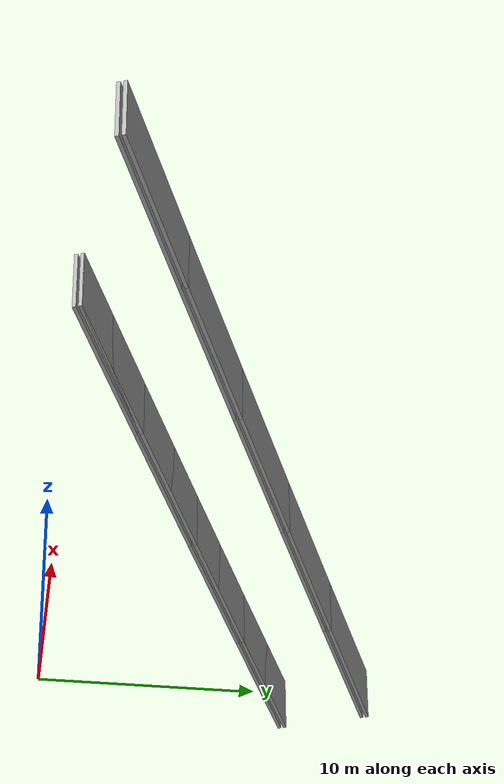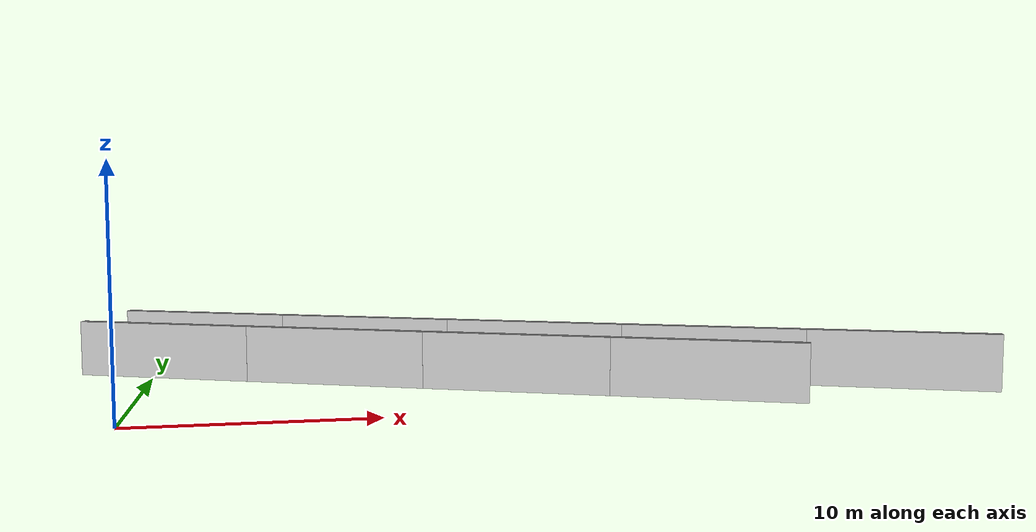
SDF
<?xml version="1.0" ?>
<sdf version="1.6">
  <model name="sps_0709">
    <pose frame="">0 0 0 0 -0 0</pose>
    <static>1</static>
    <self_collide>0</self_collide>
    <allow_auto_disable>0</allow_auto_disable>
    <link name="Wall6685">
      <kinematic>0</kinematic>
      <gravity>1</gravity>
      <self_collide>0</self_collide>
      <collision name="collision">
        <geometry>
          <box>
            <size>8.26089 0.15 2.5</size>
          </box>
        </geometry>
        <pose frame="">0 0 0 0 -0 0</pose>
      </collision>
      <visual name="visual">
        <geometry>
          <box>
            <size>8.26089 0.15 2.5</size>
          </box>
        </geometry>
        <pose frame="">0 0 0 0 -0 0</pose>
        <cast_shadows>1</cast_shadows>
        <transparency>0.0</transparency>
      </visual>
      <pose frame="">23.6659 1.42818 1.25 0 -0 2.77319</pose>
    </link>
    <link name="Wall6686">
      <kinematic>0</kinematic>
      <gravity>1</gravity>
      <self_collide>0</self_collide>
      <collision name="collision">
        <geometry>
          <box>
            <size>8.26117 0.15 2.5</size>
          </box>
        </geometry>
        <pose frame="">0 0 0 0 -0 0</pose>
      </collision>
      <visual name="visual">
        <geometry>
          <box>
            <size>8.26117 0.15 2.5</size>
          </box>
        </geometry>
        <pose frame="">0 0 0 0 -0 0</pose>
        <cast_shadows>1</cast_shadows>
        <transparency>0.0</transparency>
      </visual>
      <pose frame="">15.9628 4.41237 1.25 0 -0 2.77081</pose>
    </link>
    <link name="Wall6687">
      <kinematic>0</kinematic>
      <gravity>1</gravity>
      <self_collide>0</self_collide>
      <collision name="collision">
        <geometry>
          <box>
            <size>8.26106 0.15 2.5</size>
          </box>
        </geometry>
        <pose frame="">0 0 0 0 -0 0</pose>
      </collision>
      <visual name="visual">
        <geometry>
          <box>
            <size>8.26106 0.15 2.5</size>
          </box>
        </geometry>
        <pose frame="">0 0 0 0 -0 0</pose>
        <cast_shadows>1</cast_shadows>
        <transparency>0.0</transparency>
      </visual>
      <pose frame="">8.26656 7.41478 1.25 0 -0 2.76846</pose>
    </link>
    <link name="Wall6688">
      <kinematic>0</kinematic>
      <gravity>1</gravity>
      <self_collide>0</self_collide>
      <collision name="collision">
        <geometry>
          <box>
            <size>8.26095 0.15 2.5</size>
          </box>
        </geometry>
        <pose frame="">0 0 0 0 -0 0</pose>
      </collision>
      <visual name="visual">
        <geometry>
          <box>
            <size>8.26095 0.15 2.5</size>
          </box>
        </geometry>
        <pose frame="">0 0 0 0 -0 0</pose>
        <cast_shadows>1</cast_shadows>
        <transparency>0.0</transparency>
      </visual>
      <pose frame="">0.577567 10.4353 1.25 0 -0 2.76609</pose>
    </link>
    <link name="Wall6712">
      <kinematic>0</kinematic>
      <gravity>1</gravity>
      <self_collide>0</self_collide>
      <collision name="collision">
        <geometry>
          <box>
            <size>8.25168 0.15 2.5</size>
          </box>
        </geometry>
        <pose frame="">0 0 0 0 -0 0</pose>
      </collision>
      <visual name="visual">
        <geometry>
          <box>
            <size>8.25168 0.15 2.5</size>
          </box>
        </geometry>
        <pose frame="">0 0 0 0 -0 0</pose>
        <cast_shadows>1</cast_shadows>
        <transparency>0.0</transparency>
      </visual>
      <pose frame="">1.97826 13.9241 1.25 0 0 -0.375474</pose>
    </link>
    <link name="Wall6713">
      <kinematic>0</kinematic>
      <gravity>1</gravity>
      <self_collide>0</self_collide>
      <collision name="collision">
        <geometry>
          <box>
            <size>8.25157 0.15 2.5</size>
          </box>
        </geometry>
        <pose frame="">0 0 0 0 -0 0</pose>
      </collision>
      <visual name="visual">
        <geometry>
          <box>
            <size>8.25157 0.15 2.5</size>
          </box>
        </geometry>
        <pose frame="">0 0 0 0 -0 0</pose>
        <cast_shadows>1</cast_shadows>
        <transparency>0.0</transparency>
      </visual>
      <pose frame="">9.65856 10.9071 1.25 0 0 -0.373134</pose>
    </link>
    <link name="Wall6714">
      <kinematic>0</kinematic>
      <gravity>1</gravity>
      <self_collide>0</self_collide>
      <collision name="collision">
        <geometry>
          <box>
            <size>8.25174 0.15 2.5</size>
          </box>
        </geometry>
        <pose frame="">0 0 0 0 -0 0</pose>
      </collision>
      <visual name="visual">
        <geometry>
          <box>
            <size>8.25174 0.15 2.5</size>
          </box>
        </geometry>
        <pose frame="">0 0 0 0 -0 0</pose>
        <cast_shadows>1</cast_shadows>
        <transparency>0.0</transparency>
      </visual>
      <pose frame="">17.3459 7.9081 1.25 0 0 -0.370784</pose>
    </link>
    <link name="Wall6715">
      <kinematic>0</kinematic>
      <gravity>1</gravity>
      <self_collide>0</self_collide>
      <collision name="collision">
        <geometry>
          <box>
            <size>8.25165 0.15 2.5</size>
          </box>
        </geometry>
        <pose frame="">0 0 0 0 -0 0</pose>
      </collision>
      <visual name="visual">
        <geometry>
          <box>
            <size>8.25165 0.15 2.5</size>
          </box>
        </geometry>
        <pose frame="">0 0 0 0 -0 0</pose>
        <cast_shadows>1</cast_shadows>
        <transparency>0.0</transparency>
      </visual>
      <pose frame="">25.0404 4.92729 1.25 0 0 -0.368401</pose>
    </link>
    <link name="Wall6716">
      <kinematic>0</kinematic>
      <gravity>1</gravity>
      <self_collide>0</self_collide>
      <collision name="collision">
        <geometry>
          <box>
            <size>8.25148 0.15 2.5</size>
          </box>
        </geometry>
        <pose frame="">0 0 0 0 -0 0</pose>
      </collision>
      <visual name="visual">
        <geometry>
          <box>
            <size>8.25148 0.15 2.5</size>
          </box>
        </geometry>
        <pose frame="">0 0 0 0 -0 0</pose>
        <cast_shadows>1</cast_shadows>
        <transparency>0.0</transparency>
      </visual>
      <pose frame="">32.7418 1.9648 1.25 0 0 -0.366039</pose>
    </link>
    <link name="Wall18364">
      <kinematic>0</kinematic>
      <gravity>1</gravity>
      <self_collide>0</self_collide>
      <collision name="collision">
        <geometry>
          <box>
            <size>8.25168 0.15 2.5</size>
          </box>
        </geometry>
        <pose frame="">0 0 0 0 -0 0</pose>
      </collision>
      <visual name="visual">
        <geometry>
          <box>
            <size>8.25168 0.15 2.5</size>
          </box>
        </geometry>
        <pose frame="">0 0 0 0 -0 0</pose>
        <cast_shadows>1</cast_shadows>
        <transparency>0.0</transparency>
      </visual>
      <pose frame="">1.97826 13.9241 1.25 0 0 -0.375474</pose>
    </link>
    <link name="Wall18365">
      <kinematic>0</kinematic>
      <gravity>1</gravity>
      <self_collide>0</self_collide>
      <collision name="collision">
        <geometry>
          <box>
            <size>8.25157 0.15 2.5</size>
          </box>
        </geometry>
        <pose frame="">0 0 0 0 -0 0</pose>
      </collision>
      <visual name="visual">
        <geometry>
          <box>
            <size>8.25157 0.15 2.5</size>
          </box>
        </geometry>
        <pose frame="">0 0 0 0 -0 0</pose>
        <cast_shadows>1</cast_shadows>
        <transparency>0.0</transparency>
      </visual>
      <pose frame="">9.65856 10.9071 1.25 0 0 -0.373134</pose>
    </link>
    <link name="Wall18366">
      <kinematic>0</kinematic>
      <gravity>1</gravity>
      <self_collide>0</self_collide>
      <collision name="collision">
        <geometry>
          <box>
            <size>8.25174 0.15 2.5</size>
          </box>
        </geometry>
        <pose frame="">0 0 0 0 -0 0</pose>
      </collision>
      <visual name="visual">
        <geometry>
          <box>
            <size>8.25174 0.15 2.5</size>
          </box>
        </geometry>
        <pose frame="">0 0 0 0 -0 0</pose>
        <cast_shadows>1</cast_shadows>
        <transparency>0.0</transparency>
      </visual>
      <pose frame="">17.3459 7.9081 1.25 0 0 -0.370784</pose>
    </link>
    <link name="Wall18367">
      <kinematic>0</kinematic>
      <gravity>1</gravity>
      <self_collide>0</self_collide>
      <collision name="collision">
        <geometry>
          <box>
            <size>8.25165 0.15 2.5</size>
          </box>
        </geometry>
        <pose frame="">0 0 0 0 -0 0</pose>
      </collision>
      <visual name="visual">
        <geometry>
          <box>
            <size>8.25165 0.15 2.5</size>
          </box>
        </geometry>
        <pose frame="">0 0 0 0 -0 0</pose>
        <cast_shadows>1</cast_shadows>
        <transparency>0.0</transparency>
      </visual>
      <pose frame="">25.0404 4.92729 1.25 0 0 -0.368401</pose>
    </link>
    <link name="Wall18368">
      <kinematic>0</kinematic>
      <gravity>1</gravity>
      <self_collide>0</self_collide>
      <collision name="collision">
        <geometry>
          <box>
            <size>8.25148 0.15 2.5</size>
          </box>
        </geometry>
        <pose frame="">0 0 0 0 -0 0</pose>
      </collision>
      <visual name="visual">
        <geometry>
          <box>
            <size>8.25148 0.15 2.5</size>
          </box>
        </geometry>
        <pose frame="">0 0 0 0 -0 0</pose>
        <cast_shadows>1</cast_shadows>
        <transparency>0.0</transparency>
      </visual>
      <pose frame="">32.7418 1.9648 1.25 0 0 -0.366039</pose>
    </link>
    <link name="Wall35051">
      <kinematic>0</kinematic>
      <gravity>1</gravity>
      <self_collide>0</self_collide>
      <collision name="collision">
        <geometry>
          <box>
            <size>8.25099 0.15 2.5</size>
          </box>
        </geometry>
        <pose frame="">0 0 0 0 -0 0</pose>
      </collision>
      <visual name="visual">
        <geometry>
          <box>
            <size>8.25099 0.15 2.5</size>
          </box>
        </geometry>
        <pose frame="">0 0 0 0 -0 0</pose>
        <cast_shadows>1</cast_shadows>
        <transparency>0.0</transparency>
      </visual>
      <pose frame="">2.07156 14.156 1.25 0 0 -0.375483</pose>
    </link>
    <link name="Wall35052">
      <kinematic>0</kinematic>
      <gravity>1</gravity>
      <self_collide>0</self_collide>
      <collision name="collision">
        <geometry>
          <box>
            <size>8.25082 0.15 2.5</size>
          </box>
        </geometry>
        <pose frame="">0 0 0 0 -0 0</pose>
      </collision>
      <visual name="visual">
        <geometry>
          <box>
            <size>8.25082 0.15 2.5</size>
          </box>
        </geometry>
        <pose frame="">0 0 0 0 -0 0</pose>
        <cast_shadows>1</cast_shadows>
        <transparency>0.0</transparency>
      </visual>
      <pose frame="">9.75115 11.1392 1.25 0 0 -0.373146</pose>
    </link>
    <link name="Wall35053">
      <kinematic>0</kinematic>
      <gravity>1</gravity>
      <self_collide>0</self_collide>
      <collision name="collision">
        <geometry>
          <box>
            <size>8.25102 0.15 2.5</size>
          </box>
        </geometry>
        <pose frame="">0 0 0 0 -0 0</pose>
      </collision>
      <visual name="visual">
        <geometry>
          <box>
            <size>8.25102 0.15 2.5</size>
          </box>
        </geometry>
        <pose frame="">0 0 0 0 -0 0</pose>
        <cast_shadows>1</cast_shadows>
        <transparency>0.0</transparency>
      </visual>
      <pose frame="">17.4379 8.14049 1.25 0 0 -0.370763</pose>
    </link>
    <link name="Wall35054">
      <kinematic>0</kinematic>
      <gravity>1</gravity>
      <self_collide>0</self_collide>
      <collision name="collision">
        <geometry>
          <box>
            <size>8.25101 0.15 2.5</size>
          </box>
        </geometry>
        <pose frame="">0 0 0 0 -0 0</pose>
      </collision>
      <visual name="visual">
        <geometry>
          <box>
            <size>8.25101 0.15 2.5</size>
          </box>
        </geometry>
        <pose frame="">0 0 0 0 -0 0</pose>
        <cast_shadows>1</cast_shadows>
        <transparency>0.0</transparency>
      </visual>
      <pose frame="">25.1317 5.15999 1.25 0 0 -0.368407</pose>
    </link>
    <link name="Wall35055">
      <kinematic>0</kinematic>
      <gravity>1</gravity>
      <self_collide>0</self_collide>
      <collision name="collision">
        <geometry>
          <box>
            <size>8.25101 0.15 2.5</size>
          </box>
        </geometry>
        <pose frame="">0 0 0 0 -0 0</pose>
      </collision>
      <visual name="visual">
        <geometry>
          <box>
            <size>8.25101 0.15 2.5</size>
          </box>
        </geometry>
        <pose frame="">0 0 0 0 -0 0</pose>
        <cast_shadows>1</cast_shadows>
        <transparency>0.0</transparency>
      </visual>
      <pose frame="">32.8326 2.19768 1.25 0 0 -0.366037</pose>
    </link>
    <link name="Wall37886">
      <kinematic>0</kinematic>
      <gravity>1</gravity>
      <self_collide>0</self_collide>
      <collision name="collision">
        <geometry>
          <box>
            <size>8.26164 0.15 2.5</size>
          </box>
        </geometry>
        <pose frame="">0 0 0 0 -0 0</pose>
      </collision>
      <visual name="visual">
        <geometry>
          <box>
            <size>8.26164 0.15 2.5</size>
          </box>
        </geometry>
        <pose frame="">0 0 0 0 -0 0</pose>
        <cast_shadows>1</cast_shadows>
        <transparency>0.0</transparency>
      </visual>
      <pose frame="">0.484458 10.2032 1.25 0 0 -0.375491</pose>
    </link>
    <link name="Wall37887">
      <kinematic>0</kinematic>
      <gravity>1</gravity>
      <self_collide>0</self_collide>
      <collision name="collision">
        <geometry>
          <box>
            <size>8.26164 0.15 2.5</size>
          </box>
        </geometry>
        <pose frame="">0 0 0 0 -0 0</pose>
      </collision>
      <visual name="visual">
        <geometry>
          <box>
            <size>8.26164 0.15 2.5</size>
          </box>
        </geometry>
        <pose frame="">0 0 0 0 -0 0</pose>
        <cast_shadows>1</cast_shadows>
        <transparency>0.0</transparency>
      </visual>
      <pose frame="">8.17406 7.18251 1.25 0 0 -0.373126</pose>
    </link>
    <link name="Wall37888">
      <kinematic>0</kinematic>
      <gravity>1</gravity>
      <self_collide>0</self_collide>
      <collision name="collision">
        <geometry>
          <box>
            <size>8.2618 0.15 2.5</size>
          </box>
        </geometry>
        <pose frame="">0 0 0 0 -0 0</pose>
      </collision>
      <visual name="visual">
        <geometry>
          <box>
            <size>8.2618 0.15 2.5</size>
          </box>
        </geometry>
        <pose frame="">0 0 0 0 -0 0</pose>
        <cast_shadows>1</cast_shadows>
        <transparency>0.0</transparency>
      </visual>
      <pose frame="">15.8708 4.17992 1.25 0 0 -0.370778</pose>
    </link>
    <link name="Wall37889">
      <kinematic>0</kinematic>
      <gravity>1</gravity>
      <self_collide>0</self_collide>
      <collision name="collision">
        <geometry>
          <box>
            <size>8.26154 0.15 2.5</size>
          </box>
        </geometry>
        <pose frame="">0 0 0 0 -0 0</pose>
      </collision>
      <visual name="visual">
        <geometry>
          <box>
            <size>8.26154 0.15 2.5</size>
          </box>
        </geometry>
        <pose frame="">0 0 0 0 -0 0</pose>
        <cast_shadows>1</cast_shadows>
        <transparency>0.0</transparency>
      </visual>
      <pose frame="">23.5746 1.19551 1.25 0 0 -0.368406</pose>
    </link>
    <link name="Wall37969">
      <kinematic>0</kinematic>
      <gravity>1</gravity>
      <self_collide>0</self_collide>
      <collision name="collision">
        <geometry>
          <box>
            <size>8.26095 0.15 2.5</size>
          </box>
        </geometry>
        <pose frame="">0 0 0 0 -0 0</pose>
      </collision>
      <visual name="visual">
        <geometry>
          <box>
            <size>8.26095 0.15 2.5</size>
          </box>
        </geometry>
        <pose frame="">0 0 0 0 -0 0</pose>
        <cast_shadows>1</cast_shadows>
        <transparency>0.0</transparency>
      </visual>
      <pose frame="">0.577567 10.4353 1.25 0 0 -0.3755</pose>
    </link>
    <link name="Wall37970">
      <kinematic>0</kinematic>
      <gravity>1</gravity>
      <self_collide>0</self_collide>
      <collision name="collision">
        <geometry>
          <box>
            <size>8.26106 0.15 2.5</size>
          </box>
        </geometry>
        <pose frame="">0 0 0 0 -0 0</pose>
      </collision>
      <visual name="visual">
        <geometry>
          <box>
            <size>8.26106 0.15 2.5</size>
          </box>
        </geometry>
        <pose frame="">0 0 0 0 -0 0</pose>
        <cast_shadows>1</cast_shadows>
        <transparency>0.0</transparency>
      </visual>
      <pose frame="">8.26656 7.41478 1.25 0 0 -0.373129</pose>
    </link>
    <link name="Wall37971">
      <kinematic>0</kinematic>
      <gravity>1</gravity>
      <self_collide>0</self_collide>
      <collision name="collision">
        <geometry>
          <box>
            <size>8.26117 0.15 2.5</size>
          </box>
        </geometry>
        <pose frame="">0 0 0 0 -0 0</pose>
      </collision>
      <visual name="visual">
        <geometry>
          <box>
            <size>8.26117 0.15 2.5</size>
          </box>
        </geometry>
        <pose frame="">0 0 0 0 -0 0</pose>
        <cast_shadows>1</cast_shadows>
        <transparency>0.0</transparency>
      </visual>
      <pose frame="">15.9628 4.41237 1.25 0 0 -0.370785</pose>
    </link>
    <link name="Wall37972">
      <kinematic>0</kinematic>
      <gravity>1</gravity>
      <self_collide>0</self_collide>
      <collision name="collision">
        <geometry>
          <box>
            <size>8.26089 0.15 2.5</size>
          </box>
        </geometry>
        <pose frame="">0 0 0 0 -0 0</pose>
      </collision>
      <visual name="visual">
        <geometry>
          <box>
            <size>8.26089 0.15 2.5</size>
          </box>
        </geometry>
        <pose frame="">0 0 0 0 -0 0</pose>
        <cast_shadows>1</cast_shadows>
        <transparency>0.0</transparency>
      </visual>
      <pose frame="">23.6659 1.42818 1.25 0 0 -0.368405</pose>
    </link>
  </model>
</sdf>
